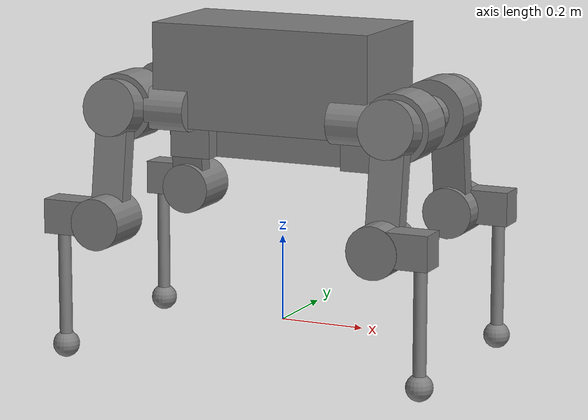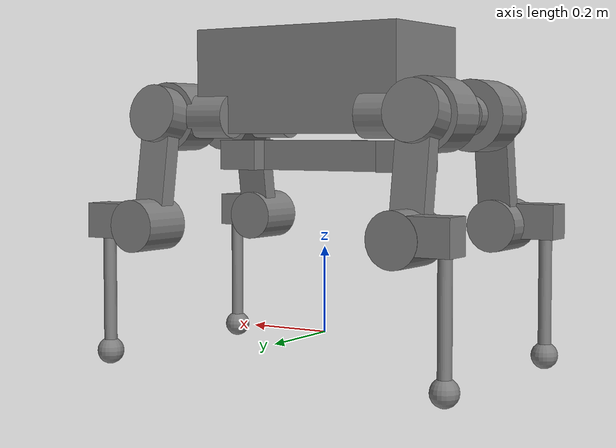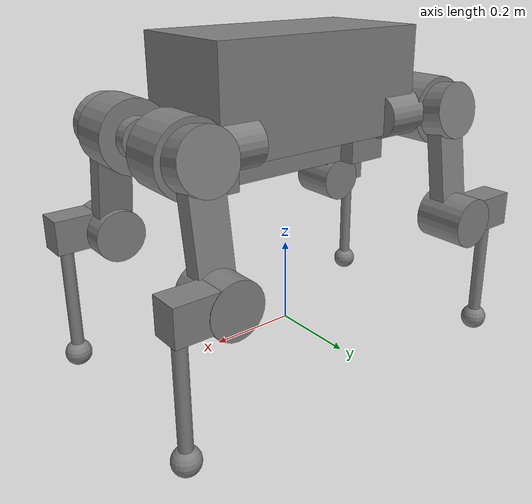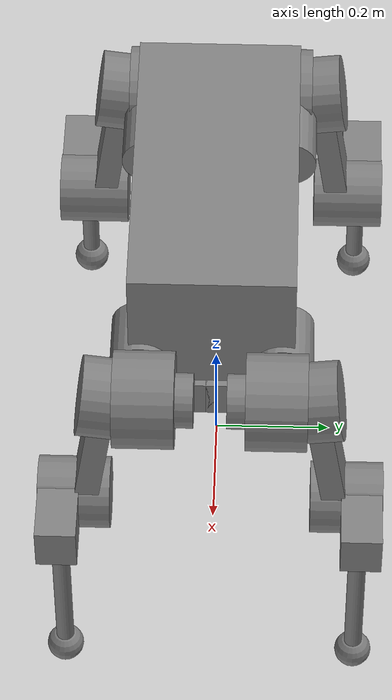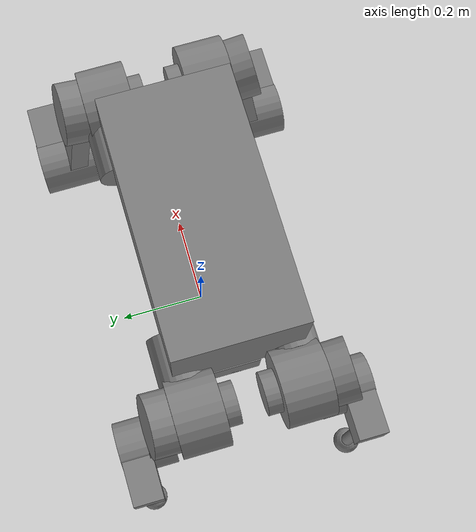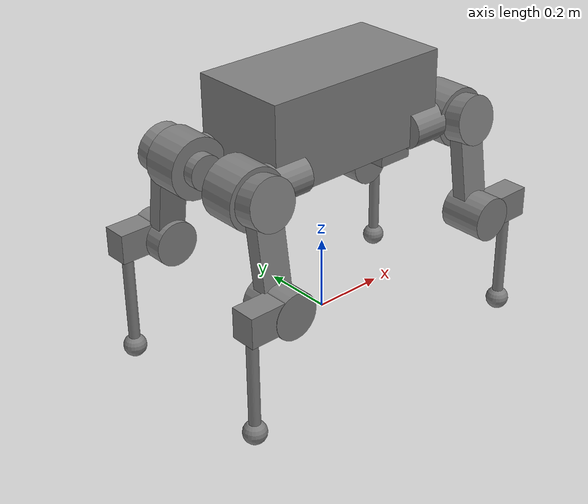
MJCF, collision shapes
<mujoco model="anymal_b">
  <compiler angle="radian" meshdir="assets" texturedir="assets" autolimits="true" />

  <option cone="elliptic" impratio="100" />

  <default>
    <default class="anymal_b">
      <mesh scale="0.001 0.001 0.001"/>
      <geom friction="0.4" margin="0.001" condim="1" mass="0"/>
      <joint axis="0 1 0" damping="0.1" armature="0.01" frictionloss="0.2"/>
      <motor ctrlrange="-80 80"/>
      <site group="3"/>
      <default class="HAA">
        <joint axis="1 0 0"/>
      </default>
      <default class="HFE">
        <joint axis="0 1 0"/>
      </default>
      <default class="KFE">
        <joint axis="0 1 0"/>
      </default>
      <default class="visual">
        <geom type="mesh" contype="0" conaffinity="0" group="2"/>
        <default class="visual_zflip">
          <geom quat="0 0 0 1"/>
        </default>
      </default>
      <default class="collision">
        <geom group="3"/>
        <default class="haa_actuator">
          <geom type="cylinder" size="0.05 0.05" euler="0 1.57079632679 0"/>
        </default>
        <default class="belly_plate_bump">
          <geom type="box" size="0.05 0.05 0.035"/>
        </default>
        <default class="mount">
          <geom type="box" size="0.01 0.135 0.045"/>
        </default>
        <default class="protector">
          <geom type="cylinder" size="0.08 0.05"/>
        </default>
        <default class="heatfins">
          <geom type="cylinder" size="0.045 0.015"/>
        </default>
        <default class="thigh_with_fins">
          <geom type="box" size="0.04 0.02 0.125"/>
        </default>
        <default class="kfe_actuator">
          <geom type="cylinder" size="0.06 0.06"/>
        </default>
        <default class="upper_protector">
          <geom type="cylinder" size="0.066 0.06"/>
        </default>
        <default class="shank">
          <geom type="box" size="0.04 0.034 0.065" euler="0 1.57079632679 0"/>
        </default>
        <default class="adapter">
          <geom type="cylinder" size="0.015 0.14" pos="0 0 -0.14"/>
        </default>
        <default class="foot">
          <geom type="sphere" size="0.031" pos="0 0 0.02325" priority="1" condim="6"
            friction="1.0 0.02 0.01"/>
        </default>
      </default>
    </default>
  </default>

  <asset>
    <material name="light_gray" rgba="0.8 0.8 0.8 1"/>
    <material name="dark_gray" rgba="0.64 0.64 0.64 1"/>
    <material name="alu_eloxiert" rgba="0.1139 0.1139 0.1139 1"/>
    <material name="any_blau" rgba="0.2399 0.3499 0.5899 1"/>
    <texture name="base_uv_texture" type="2d" file="base_uv_texture.png"/>
    <material name="carbon_fibre_logo" texture="base_uv_texture" specular="1" shininess="1"/>
    <material name="rot_emcy" rgba="0.2611 0.09645 0.0735 1"/>
    <material name="yellow_emcy" rgba="0.5987 0.4607 0.2442 1"/>
    <material name="copper" rgba="0.8 0.4673 0.284 1"/>
    <material name="foam_dark" rgba="0.1 0.1 0.1 1"/>
    <texture name="carbon_uv_texture" type="2d" file="carbon_uv_texture.png"/>
    <material name="carbon_fibre" texture="carbon_uv_texture" specular="1" shininess="1"/>

    <mesh class="anymal_b" file="anymal_base_0.obj"/>
    <mesh class="anymal_b" file="anymal_base_1.obj"/>
    <mesh class="anymal_b" file="anymal_base_2.obj"/>
    <mesh class="anymal_b" file="anymal_base_3.obj"/>
    <mesh class="anymal_b" file="anymal_base_4.obj"/>
    <mesh class="anymal_b" file="anymal_base_5.obj"/>
    <mesh class="anymal_b" file="anymal_base_6.obj"/>
    <mesh class="anymal_b" file="anymal_base_7.obj"/>
    <mesh class="anymal_b" file="anymal_hip_l_0.obj"/>
    <mesh class="anymal_b" file="anymal_hip_l_1.obj"/>
    <mesh class="anymal_b" file="anymal_hip_l_2.obj"/>
    <mesh class="anymal_b" file="anymal_hip_l_3.obj"/>
    <mesh class="anymal_b" file="anymal_hip_l_4.obj"/>
    <mesh class="anymal_b" file="anymal_hip_l_5.obj"/>
    <mesh class="anymal_b" file="anymal_hip_l_6.obj"/>
    <mesh class="anymal_b" file="anymal_thigh_l_0.obj"/>
    <mesh class="anymal_b" file="anymal_thigh_l_1.obj"/>
    <mesh class="anymal_b" file="anymal_thigh_l_2.obj"/>
    <mesh class="anymal_b" file="anymal_thigh_l_3.obj"/>
    <mesh class="anymal_b" file="anymal_thigh_l_4.obj"/>
    <mesh class="anymal_b" file="anymal_thigh_l_5.obj"/>
    <mesh class="anymal_b" file="anymal_shank_l_0.obj"/>
    <mesh class="anymal_b" file="anymal_shank_l_1.obj"/>
    <mesh class="anymal_b" file="anymal_shank_l_2.obj"/>
    <mesh class="anymal_b" file="anymal_shank_l_3.obj"/>
    <mesh class="anymal_b" file="anymal_hip_r_0.obj"/>
    <mesh class="anymal_b" file="anymal_hip_r_1.obj"/>
    <mesh class="anymal_b" file="anymal_hip_r_2.obj"/>
    <mesh class="anymal_b" file="anymal_hip_r_3.obj"/>
    <mesh class="anymal_b" file="anymal_hip_r_4.obj"/>
    <mesh class="anymal_b" file="anymal_hip_r_5.obj"/>
    <mesh class="anymal_b" file="anymal_hip_r_6.obj"/>
    <mesh class="anymal_b" file="anymal_thigh_r_0.obj"/>
    <mesh class="anymal_b" file="anymal_thigh_r_1.obj"/>
    <mesh class="anymal_b" file="anymal_thigh_r_2.obj"/>
    <mesh class="anymal_b" file="anymal_thigh_r_3.obj"/>
    <mesh class="anymal_b" file="anymal_thigh_r_4.obj"/>
    <mesh class="anymal_b" file="anymal_thigh_r_5.obj"/>
    <mesh class="anymal_b" file="anymal_shank_r_0.obj"/>
    <mesh class="anymal_b" file="anymal_shank_r_1.obj"/>
    <mesh class="anymal_b" file="anymal_shank_r_2.obj"/>
    <mesh class="anymal_b" file="anymal_shank_r_3.obj"/>
    <mesh class="anymal_b" file="anymal_foot_0.obj"/>
    <mesh class="anymal_b" file="anymal_foot_1.obj"/>
    <mesh class="anymal_b" file="anymal_foot_2.obj"/>
    <mesh class="anymal_b" file="anymal_foot_3.obj"/>
  </asset>

  <worldbody>
    <body name="base" pos="0 0 0.50" childclass="anymal_b">
      <freejoint/>
      <inertial mass="19.2035" pos="0.0025 0 0.0502071" quat="0.5 0.5 0.5 0.5" diaginertia="0.639559 0.624031 0.217374"/>
      <geom class="visual" mesh="anymal_base_0" material="yellow_emcy"/>
      <geom class="visual" mesh="anymal_base_1" material="rot_emcy"/>
      <geom class="visual" mesh="anymal_base_2" material="dark_gray"/>
      <geom class="visual" mesh="anymal_base_3" material="any_blau"/>
      <geom class="visual" mesh="anymal_base_4" material="alu_eloxiert"/>
      <geom class="visual" mesh="anymal_base_5" material="carbon_fibre_logo"/>
      <geom class="visual" mesh="anymal_base_6" material="foam_dark"/>
      <geom class="visual" mesh="anymal_base_7" material="light_gray"/>
      <geom class="collision" size="0.2655 0.135 0.12" pos="0 0 0.08" type="box"/>
      <geom class="haa_actuator" pos="0.227 0.116 0"/>
      <geom class="haa_actuator" pos="0.227 -0.116 0"/>
      <geom class="haa_actuator" pos="-0.227 0.116 0"/>
      <geom class="haa_actuator" pos="-0.227 -0.116 0"/>
      <geom class="belly_plate_bump" pos="0.2155 0 -0.09"/>
      <geom class="belly_plate_bump" pos="-0.2155 0 -0.09"/>
      <geom class="collision" size="0.2655 0.01 0.035" pos="0 0 -0.09" type="box"/>
      <site name="imu" pos="0 0 0.08" />
      <body name="LF_HIP" pos="0.277 0.116 0">
        <inertial mass="1.42462" pos="0.0645163 -0.0037871 -0.000152184" quat="0.996866 0.0379822 0.0252009 -0.0646548"
          diaginertia="0.00243341 0.00230249 0.00197758"/>
        <joint name="LF_HAA" class="HAA"/>
        <geom class="visual" mesh="anymal_hip_l_0" material="light_gray"/>
        <geom class="visual" mesh="anymal_hip_l_1" material="copper"/>
        <geom class="visual" mesh="anymal_hip_l_2" material="foam_dark"/>
        <geom class="visual" mesh="anymal_hip_l_3" material="alu_eloxiert"/>
        <geom class="visual" mesh="anymal_hip_l_4" material="any_blau"/>
        <geom class="visual" mesh="anymal_hip_l_5" material="dark_gray"/>
        <geom class="visual" mesh="anymal_hip_l_6" material="light_gray"/>
        <geom class="protector" pos="0.0635 -0.009 0" quat="1 1 0 0"/>
        <geom class="heatfins" pos="0.0635 -0.074 0" quat="1 1 0 0"/>
        <body name="LF_THIGH" pos="0.0635 0.041 0">
          <inertial mass="1.63498" pos="-0.00389797 0.0542266 -0.214583" quat="0.74395 -0.0633414 0.0362707 0.664237"
            diaginertia="0.0122697 0.0120427 0.00228302"/>
          <joint name="LF_HFE" class="HFE"/>
          <geom class="visual" material="any_blau" mesh="anymal_thigh_l_0"/>
          <geom class="visual" material="dark_gray" mesh="anymal_thigh_l_1"/>
          <geom class="visual" material="copper" mesh="anymal_thigh_l_2"/>
          <geom class="visual" material="alu_eloxiert" mesh="anymal_thigh_l_3"/>
          <geom class="visual" material="foam_dark" mesh="anymal_thigh_l_4"/>
          <geom class="visual" material="light_gray" mesh="anymal_thigh_l_5"/>
          <geom class="thigh_with_fins" pos="0 0.035 -0.125" quat="0.997373 0.0724365 0 0"/>
          <geom class="kfe_actuator" pos="0 0.069 -0.25" quat="1 1 0 0"/>
          <geom class="upper_protector" pos="0 -0.005 0" quat="0.654029 0.75647 0 0"/>
          <body name="LF_SHANK" pos="0 0.109 -0.25">
            <inertial mass="0.472163" pos="0.0696396 -0.0132494 -0.150905"
              quat="0.677954 -0.0950614 -0.0578104 0.726636" diaginertia="0.0116034 0.0110666 0.000723761"/>
            <joint name="LF_KFE" class="KFE"/>
            <geom class="visual" material="foam_dark" mesh="anymal_shank_l_0"/>
            <geom class="visual" material="dark_gray" mesh="anymal_shank_l_1"/>
            <geom class="visual" material="light_gray" mesh="anymal_shank_l_2"/>
            <geom class="visual" material="light_gray" mesh="anymal_shank_l_3"/>
            <geom class="shank" pos="0.065 -0.015 0.01" quat="1 0 1 0"/>
            <geom class="visual" material="carbon_fibre" mesh="anymal_foot_0" pos="0.1 -0.02 0.032"/>
            <geom class="visual" material="foam_dark" mesh="anymal_foot_1" pos="0.1 -0.02 0.032"/>
            <geom class="visual" material="dark_gray" mesh="anymal_foot_2" pos="0.1 -0.02 0.032"/>
            <geom class="visual" material="light_gray" mesh="anymal_foot_3" pos="0.1 -0.02 0.032"/>
            <geom class="adapter" pos="0.1 -0.02 -0.160625"/>
            <geom name="LF" class="foot" pos="0.1 -0.02 -0.298"/>
            <site name="LF_foot_site" pos="0.1 -0.02 -0.298" size="0.04" />
          </body>
        </body>
      </body>
      <body name="RF_HIP" pos="0.277 -0.116 0">
        <inertial mass="1.42462" pos="0.0645163 0.0037871 -0.000152184" quat="0.996866 -0.0379822 0.0252009 0.0646548"
          diaginertia="0.00243341 0.00230249 0.00197758"/>
        <joint name="RF_HAA" class="HAA"/>
        <geom class="visual" material="light_gray" mesh="anymal_hip_r_0"/>
        <geom class="visual" material="copper" mesh="anymal_hip_r_1"/>
        <geom class="visual" material="foam_dark" mesh="anymal_hip_r_2"/>
        <geom class="visual" material="alu_eloxiert" mesh="anymal_hip_r_3"/>
        <geom class="visual" material="any_blau" mesh="anymal_hip_r_4"/>
        <geom class="visual" material="dark_gray" mesh="anymal_hip_r_5"/>
        <geom class="visual" material="light_gray" mesh="anymal_hip_r_6"/>
        <geom class="protector" pos="0.0635 0.009 0" quat="1 1 0 0"/>
        <geom class="heatfins" pos="0.0635 0.074 0" quat="1 1 0 0"/>
        <body name="RF_THIGH" pos="0.0635 -0.041 0">
          <inertial mass="1.63498" pos="-0.00389797 -0.0542266 -0.214583" quat="0.664237 0.0362707 -0.0633414 0.74395"
            diaginertia="0.0122697 0.0120427 0.00228302"/>
          <joint name="RF_HFE" class="HFE"/>
          <geom class="visual" material="any_blau" mesh="anymal_thigh_r_0"/>
          <geom class="visual" material="dark_gray" mesh="anymal_thigh_r_1"/>
          <geom class="visual" material="copper" mesh="anymal_thigh_r_2"/>
          <geom class="visual" material="alu_eloxiert" mesh="anymal_thigh_r_3"/>
          <geom class="visual" material="foam_dark" mesh="anymal_thigh_r_4"/>
          <geom class="visual" material="light_gray" mesh="anymal_thigh_r_5"/>
          <geom class="thigh_with_fins" pos="0 -0.035 -0.125" quat="0.997373 -0.0724365 0 0"/>
          <geom class="kfe_actuator" pos="0 -0.069 -0.25" quat="1 1 0 0"/>
          <geom class="upper_protector" pos="0 0.005 0" quat="0.654029 -0.75647 0 0"/>
          <body name="RF_SHANK" pos="0 -0.109 -0.25">
            <inertial mass="0.472163" pos="0.0696396 0.0132494 -0.150905" quat="0.726636 -0.0578104 -0.0950614 0.677954"
              diaginertia="0.0116034 0.0110666 0.000723761"/>
            <joint name="RF_KFE" class="KFE"/>
            <geom class="visual" material="foam_dark" mesh="anymal_shank_r_0"/>
            <geom class="visual" material="dark_gray" mesh="anymal_shank_r_1"/>
            <geom class="visual" material="light_gray" mesh="anymal_shank_r_2"/>
            <geom class="visual" material="light_gray" mesh="anymal_shank_r_3"/>
            <geom class="shank" pos="0.065 0.015 0.01" quat="1 0 1 0"/>
            <geom class="visual" material="carbon_fibre" mesh="anymal_foot_0" pos="0.1 0.02 0.032"/>
            <geom class="visual" material="foam_dark" mesh="anymal_foot_1" pos="0.1 0.02 0.032"/>
            <geom class="visual" material="dark_gray" mesh="anymal_foot_2" pos="0.1 0.02 0.032"/>
            <geom class="visual" material="light_gray" mesh="anymal_foot_3" pos="0.1 0.02 0.032"/>
            <geom class="adapter" pos="0.1 0.02 -0.160625"/>
            <geom name="RF" class="foot" pos="0.1 0.02 -0.298"/>
            <site name="RF_foot_site" pos="0.1 0.02 -0.298" size="0.04" />
          </body>
        </body>
      </body>
      <body name="LH_HIP" pos="-0.277 0.116 0">
        <inertial mass="1.42462" pos="-0.0645163 -0.0037871 -0.000152184" quat="0.996866 0.0379822 -0.0252009 0.0646548"
          diaginertia="0.00243341 0.00230249 0.00197758"/>
        <joint name="LH_HAA" class="HAA"/>
        <geom class="visual_zflip" material="light_gray" mesh="anymal_hip_r_0"/>
        <geom class="visual_zflip" material="copper" mesh="anymal_hip_r_1"/>
        <geom class="visual_zflip" material="foam_dark" mesh="anymal_hip_r_2"/>
        <geom class="visual_zflip" material="alu_eloxiert" mesh="anymal_hip_r_3"/>
        <geom class="visual_zflip" material="any_blau" mesh="anymal_hip_r_4"/>
        <geom class="visual_zflip" material="dark_gray" mesh="anymal_hip_r_5"/>
        <geom class="visual_zflip" material="light_gray" mesh="anymal_hip_r_6"/>
        <geom class="protector" pos="-0.0635 -0.009 0" quat="1 -1 0 0"/>
        <geom class="heatfins" pos="-0.0635 -0.074 0" quat="1 -1 0 0"/>
        <body name="LH_THIGH" pos="-0.0635 0.041 0">
          <inertial mass="1.63498" pos="0.00389797 0.0542266 -0.214583" quat="0.664237 -0.0362707 0.0633414 0.74395"
            diaginertia="0.0122697 0.0120427 0.00228302"/>
          <joint name="LH_HFE" class="HFE"/>
          <geom class="visual_zflip" material="any_blau" mesh="anymal_thigh_r_0"/>
          <geom class="visual_zflip" material="dark_gray" mesh="anymal_thigh_r_1"/>
          <geom class="visual_zflip" material="copper" mesh="anymal_thigh_r_2"/>
          <geom class="visual_zflip" material="alu_eloxiert" mesh="anymal_thigh_r_3"/>
          <geom class="visual_zflip" material="foam_dark" mesh="anymal_thigh_r_4"/>
          <geom class="visual_zflip" material="light_gray" mesh="anymal_thigh_r_5"/>
          <geom class="thigh_with_fins" pos="0 0.035 -0.125" quat="0.997373 0.0724365 0 0"/>
          <geom class="kfe_actuator" pos="0 0.069 -0.25" quat="1 1 0 0"/>
          <geom class="upper_protector" pos="0 -0.005 0" quat="0.654029 0.75647 0 0"/>
          <body name="LH_SHANK" pos="0 0.109 -0.25">
            <inertial mass="0.472163" pos="-0.0696396 -0.0132494 -0.150905" quat="0.726636 0.0578104 0.0950615 0.677954"
              diaginertia="0.0116034 0.0110666 0.000723761"/>
            <joint name="LH_KFE" class="KFE"/>
            <geom class="visual_zflip" material="foam_dark" mesh="anymal_shank_r_0"/>
            <geom class="visual_zflip" material="dark_gray" mesh="anymal_shank_r_1"/>
            <geom class="visual_zflip" material="light_gray" mesh="anymal_shank_r_2"/>
            <geom class="visual_zflip" material="light_gray" mesh="anymal_shank_r_3"/>
            <geom class="shank" pos="-0.065 -0.015 0.01" quat="1 0 1 0"/>
            <geom class="visual_zflip" material="carbon_fibre" mesh="anymal_foot_0" pos="-0.1 -0.02 0.032"/>
            <geom class="visual_zflip" material="foam_dark" mesh="anymal_foot_1" pos="-0.1 -0.02 0.032"/>
            <geom class="visual_zflip" material="dark_gray" mesh="anymal_foot_2" pos="-0.1 -0.02 0.032"/>
            <geom class="visual_zflip" material="light_gray" mesh="anymal_foot_3" pos="-0.1 -0.02 0.032"/>
            <geom class="adapter" pos="-0.1 -0.02 -0.160625"/>
            <geom name="LH" class="foot" pos="-0.1 -0.02 -0.298"/>
            <site name="LH_foot_site" pos="-0.1 -0.02 -0.298" size="0.04" />
          </body>
        </body>
      </body>
      <body name="RH_HIP" pos="-0.277 -0.116 0">
        <inertial mass="1.42462" pos="-0.0645163 0.0037871 -0.000152184"
          quat="0.996866 -0.0379822 -0.0252009 -0.0646548" diaginertia="0.00243341 0.00230249 0.00197758"/>
        <joint name="RH_HAA" class="HAA"/>
        <geom class="visual_zflip" mesh="anymal_hip_l_0" material="light_gray"/>
        <geom class="visual_zflip" mesh="anymal_hip_l_1" material="copper"/>
        <geom class="visual_zflip" mesh="anymal_hip_l_2" material="foam_dark"/>
        <geom class="visual_zflip" mesh="anymal_hip_l_3" material="alu_eloxiert"/>
        <geom class="visual_zflip" mesh="anymal_hip_l_4" material="any_blau"/>
        <geom class="visual_zflip" mesh="anymal_hip_l_5" material="dark_gray"/>
        <geom class="visual_zflip" mesh="anymal_hip_l_6" material="light_gray"/>
        <geom class="protector" pos="-0.0635 0.009 0" quat="1 -1 0 0"/>
        <geom class="heatfins" pos="-0.0635 0.074 0" quat="1 -1 0 0"/>
        <body name="RH_THIGH" pos="-0.0635 -0.041 0">
          <inertial mass="1.63498" pos="0.00389797 -0.0542266 -0.214583" quat="0.74395 0.0633414 -0.0362707 0.664237"
            diaginertia="0.0122697 0.0120427 0.00228302"/>
          <joint name="RH_HFE" class="HFE"/>
          <geom class="visual_zflip" material="any_blau" mesh="anymal_thigh_l_0"/>
          <geom class="visual_zflip" material="dark_gray" mesh="anymal_thigh_l_1"/>
          <geom class="visual_zflip" material="copper" mesh="anymal_thigh_l_2"/>
          <geom class="visual_zflip" material="alu_eloxiert" mesh="anymal_thigh_l_3"/>
          <geom class="visual_zflip" material="foam_dark" mesh="anymal_thigh_l_4"/>
          <geom class="visual_zflip" material="light_gray" mesh="anymal_thigh_l_5"/>
          <geom class="thigh_with_fins" pos="0 -0.035 -0.125" quat="0.997373 -0.0724365 0 0"/>
          <geom class="kfe_actuator" pos="0 -0.069 -0.25" quat="1 1 0 0"/>
          <geom class="upper_protector" pos="0 0.005 0" quat="0.654029 -0.75647 0 0"/>
          <body name="RH_SHANK" pos="0 -0.109 -0.25">
            <inertial mass="0.472163" pos="-0.0696396 0.0132494 -0.150905" quat="0.677954 0.0950614 0.0578104 0.726636"
              diaginertia="0.0116034 0.0110666 0.000723761"/>
            <joint name="RH_KFE" class="KFE"/>
            <geom class="visual_zflip" material="foam_dark" mesh="anymal_shank_l_0"/>
            <geom class="visual_zflip" material="dark_gray" mesh="anymal_shank_l_1"/>
            <geom class="visual_zflip" material="light_gray" mesh="anymal_shank_l_2"/>
            <geom class="visual_zflip" material="light_gray" mesh="anymal_shank_l_3"/>
            <geom class="shank" pos="-0.065 0.015 0.01" quat="1 0 1 0"/>
            <geom class="visual_zflip" material="carbon_fibre" mesh="anymal_foot_0" pos="-0.1 0.02 0.032"/>
            <geom class="visual_zflip" material="foam_dark" mesh="anymal_foot_1" pos="-0.1 0.02 0.032"/>
            <geom class="visual_zflip" material="dark_gray" mesh="anymal_foot_2" pos="-0.1 0.02 0.032"/>
            <geom class="visual_zflip" material="light_gray" mesh="anymal_foot_3" pos="-0.1 0.02 0.032"/>
            <geom class="adapter" pos="-0.1 0.02 -0.160625"/>
            <geom name="RH" class="foot" pos="-0.1 0.02 -0.298"/>
            <site name="RH_foot_site" pos="-0.1 0.02 -0.298" size="0.04" />
          </body>
        </body>
      </body>
    </body>
  </worldbody>

  <contact>
    <exclude body1="base" body2="LF_THIGH"/>
    <exclude body1="base" body2="RF_THIGH"/>
    <exclude body1="base" body2="LH_THIGH"/>
    <exclude body1="base" body2="RH_THIGH"/>
  </contact>

  <actuator>
    <motor class="HAA" name="LF_HAA" joint="LF_HAA" />
    <motor class="HFE" name="LF_HFE" joint="LF_HFE" />
    <motor class="KFE" name="LF_KFE" joint="LF_KFE" />
    <motor class="HAA" name="RF_HAA" joint="RF_HAA" />
    <motor class="HFE" name="RF_HFE" joint="RF_HFE" />
    <motor class="KFE" name="RF_KFE" joint="RF_KFE" />
    <motor class="HAA" name="LH_HAA" joint="LH_HAA" />
    <motor class="HFE" name="LH_HFE" joint="LH_HFE" />
    <motor class="KFE" name="LH_KFE" joint="LH_KFE" />
    <motor class="HAA" name="RH_HAA" joint="RH_HAA" />
    <motor class="HFE" name="RH_HFE" joint="RH_HFE" />
    <motor class="KFE" name="RH_KFE" joint="RH_KFE" />
  </actuator>

  <sensor>
    <jointpos name="LF_HAA_pos" joint="LF_HAA" />
    <jointpos name="LF_HFE_pos" joint="LF_HFE" />
    <jointpos name="LF_KFE_pos" joint="LF_KFE" />
    <jointpos name="RF_HAA_pos" joint="RF_HAA" />
    <jointpos name="RF_HFE_pos" joint="RF_HFE" />
    <jointpos name="RF_KFE_pos" joint="RF_KFE" />
    <jointpos name="LH_HAA_pos" joint="LH_HAA" />
    <jointpos name="LH_HFE_pos" joint="LH_HFE" />
    <jointpos name="LH_KFE_pos" joint="LH_KFE" />
    <jointpos name="RH_HAA_pos" joint="RH_HAA" />
    <jointpos name="RH_HFE_pos" joint="RH_HFE" />
    <jointpos name="RH_KFE_pos" joint="RH_KFE" />

    <jointvel name="LF_HAA_vel" joint="LF_HAA" />
    <jointvel name="LF_HFE_vel" joint="LF_HFE" />
    <jointvel name="LF_KFE_vel" joint="LF_KFE" />
    <jointvel name="RF_HAA_vel" joint="RF_HAA" />
    <jointvel name="RF_HFE_vel" joint="RF_HFE" />
    <jointvel name="RF_KFE_vel" joint="RF_KFE" />
    <jointvel name="LH_HAA_vel" joint="LH_HAA" />
    <jointvel name="LH_HFE_vel" joint="LH_HFE" />
    <jointvel name="LH_KFE_vel" joint="LH_KFE" />
    <jointvel name="RH_HAA_vel" joint="RH_HAA" />
    <jointvel name="RH_HFE_vel" joint="RH_HFE" />
    <jointvel name="RH_KFE_vel" joint="RH_KFE" />

    <jointactuatorfrc name="LF_HAA_torque" joint="LF_HAA" noise="0.01" />
    <jointactuatorfrc name="LF_HFE_torque" joint="LF_HFE" noise="0.01" />
    <jointactuatorfrc name="LF_KFE_torque" joint="LF_KFE" noise="0.01" />
    <jointactuatorfrc name="RF_HAA_torque" joint="RF_HAA" noise="0.01" />
    <jointactuatorfrc name="RF_HFE_torque" joint="RF_HFE" noise="0.01" />
    <jointactuatorfrc name="RF_KFE_torque" joint="RF_KFE" noise="0.01" />
    <jointactuatorfrc name="LH_HAA_torque" joint="LH_HAA" noise="0.01" />
    <jointactuatorfrc name="LH_HFE_torque" joint="LH_HFE" noise="0.01" />
    <jointactuatorfrc name="LH_KFE_torque" joint="LH_KFE" noise="0.01" />
    <jointactuatorfrc name="RH_HAA_torque" joint="RH_HAA" noise="0.01" />
    <jointactuatorfrc name="RH_HFE_torque" joint="RH_HFE" noise="0.01" />
    <jointactuatorfrc name="RH_KFE_torque" joint="RH_KFE" noise="0.01" />

    <framequat name="imu_quat" objtype="site" objname="imu" />
    <gyro name="imu_gyro" site="imu" />
    <accelerometer name="imu_acc" site="imu" />

    <framepos name="frame_pos" objtype="site" objname="imu" />
    <framelinvel name="frame_vel" objtype="site" objname="imu" />

    <touch name="FR_foot_force" site="RF_foot_site" />
    <touch name="FL_foot_force" site="LF_foot_site" />
    <touch name="RR_foot_force" site="RH_foot_site" />
    <touch name="RL_foot_force" site="LH_foot_site" />
  </sensor>

  <keyframe>
    <key name="stand" qpos="0 0 0.50 1 0 0 0 0.03 0.4 -0.8 -0.03 0.4 -0.8 -0.03 -0.4 0.8 0.03 -0.4 0.8"
      ctrl="0.03 0.4 -0.8 -0.03 0.4 -0.8 -0.03 -0.4 0.8 0.03 -0.4 0.8" />
    <key name="sit" qpos="0 0 0.28 1 0 0 0 0.03 0.8 -1.5 -0.03 0.8 -1.5 -0.03 -0.8 1.5 0.03 -0.8 1.5"
      ctrl="0.03 0.8 -1.5 -0.03 0.8 -1.5 -0.03 -0.8 1.5 0.03 -0.8 1.5" />
  </keyframe>
</mujoco>
